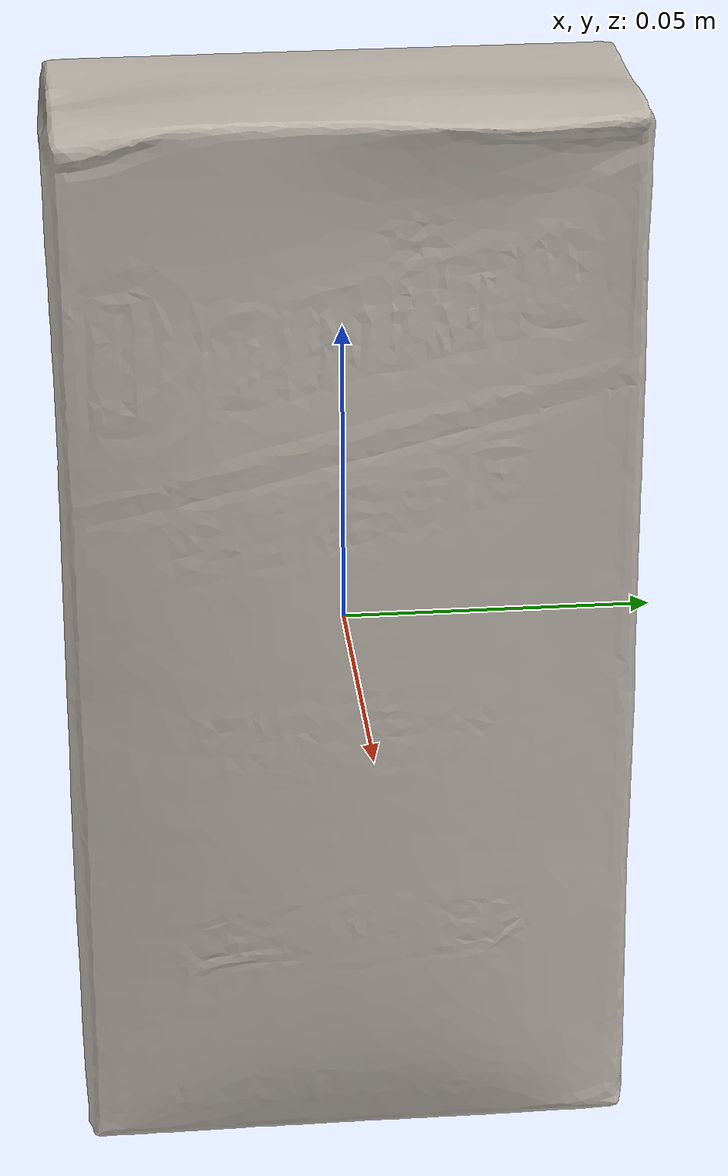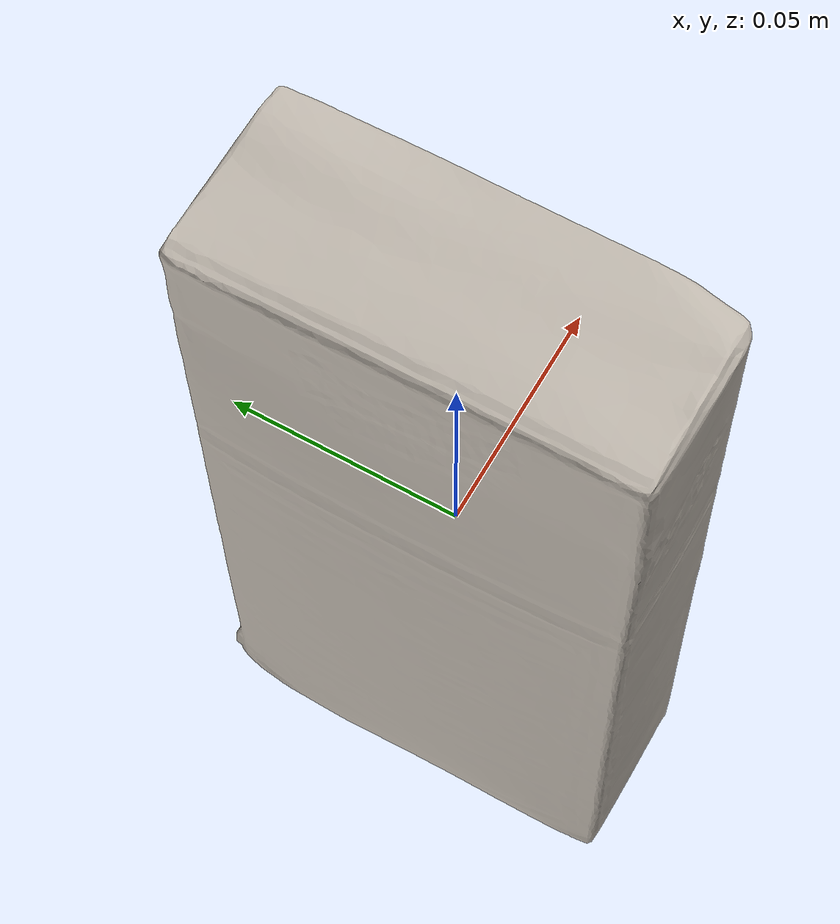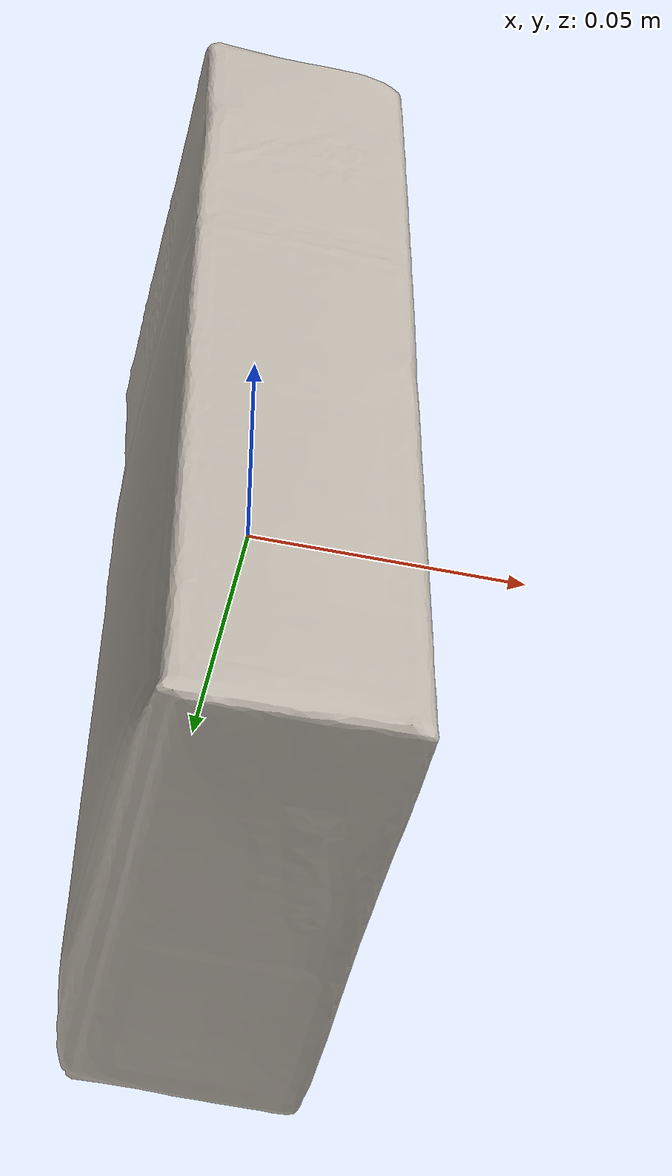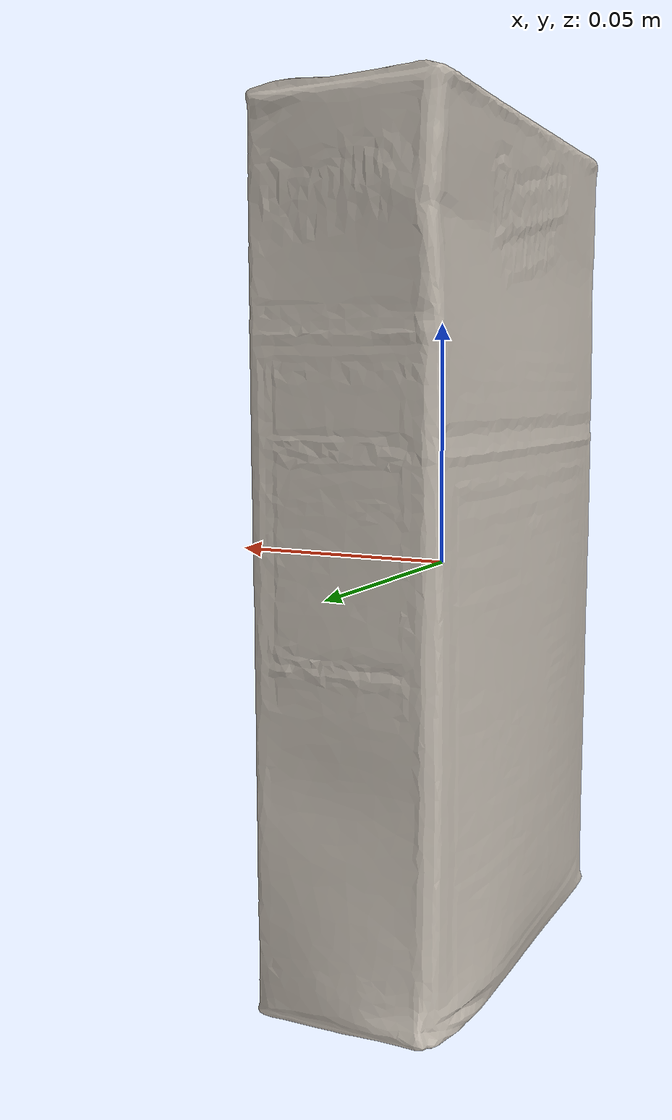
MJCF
<mujoco model="004_sugar_box">
  <compiler meshdir="assets" texturedir="assets"/>
  <default>
    <default class="visual">
      <geom group="2" type="mesh" contype="0" conaffinity="0"/>
    </default>
    <default class="collision">
      <geom group="3" type="mesh"/>
    </default>
  </default>
  <asset>
    <texture type="2d" name="texture_map" file="texture_map.png"/>
    <material name="material_0" texture="texture_map" specular="0.5" shininess="0.5"/>
    <mesh file="004_sugar_box.obj"/>
    <mesh file="004_sugar_box_collision_0.obj"/>
    <mesh file="004_sugar_box_collision_1.obj"/>
  </asset>
  <worldbody>
    <body name="004_sugar_box">
      <freejoint/>
      <geom material="material_0" mesh="004_sugar_box" class="visual" mass="0.514"/>
      <geom mesh="004_sugar_box_collision_0" rgba="0.9996925216047713 0.6190383006943406 0.5864117060911184 1" class="collision"/>
      <geom mesh="004_sugar_box_collision_1" rgba="0.4100306289037843 0.31564247054629746 0.06322521677897464 1" class="collision"/>
      <site name="barcode" pos="0.004512 0.025381 -0.085659" quat="0 0.707107 0.707107 0" group="4" rgba="1 0 0 1"/>
    </body>
  </worldbody>
</mujoco>
